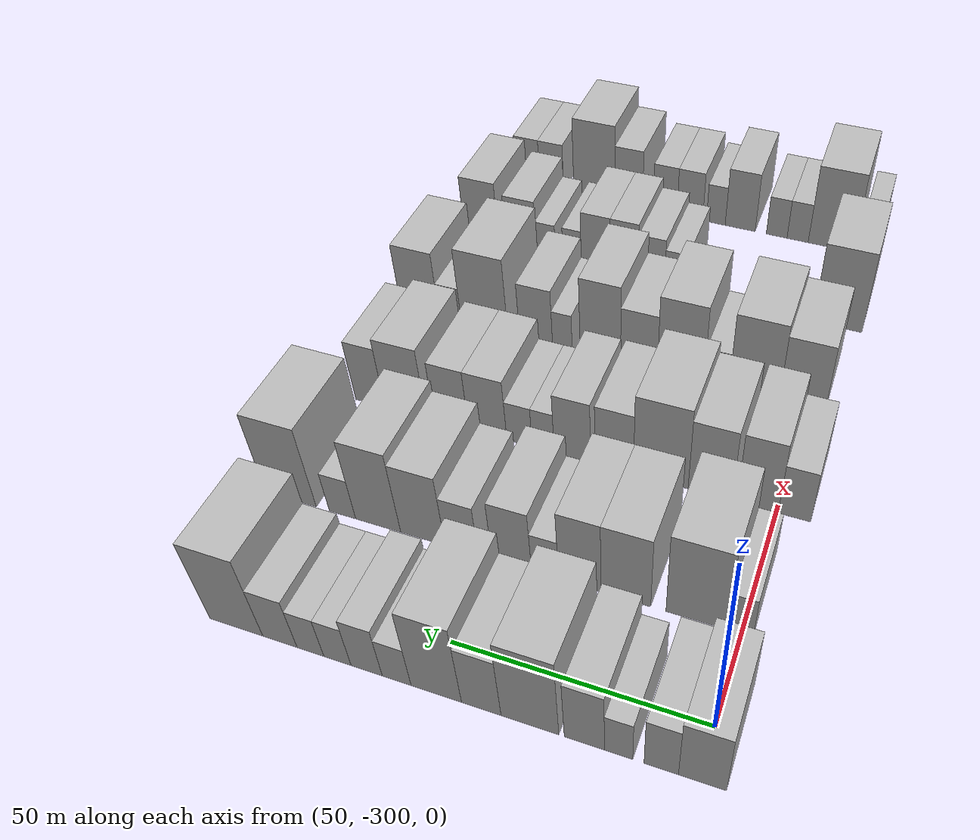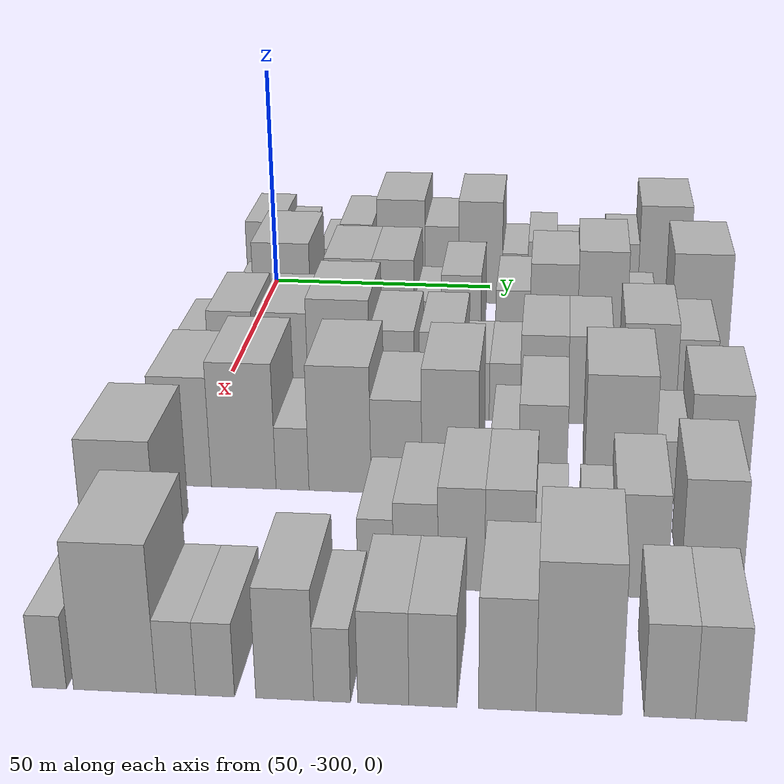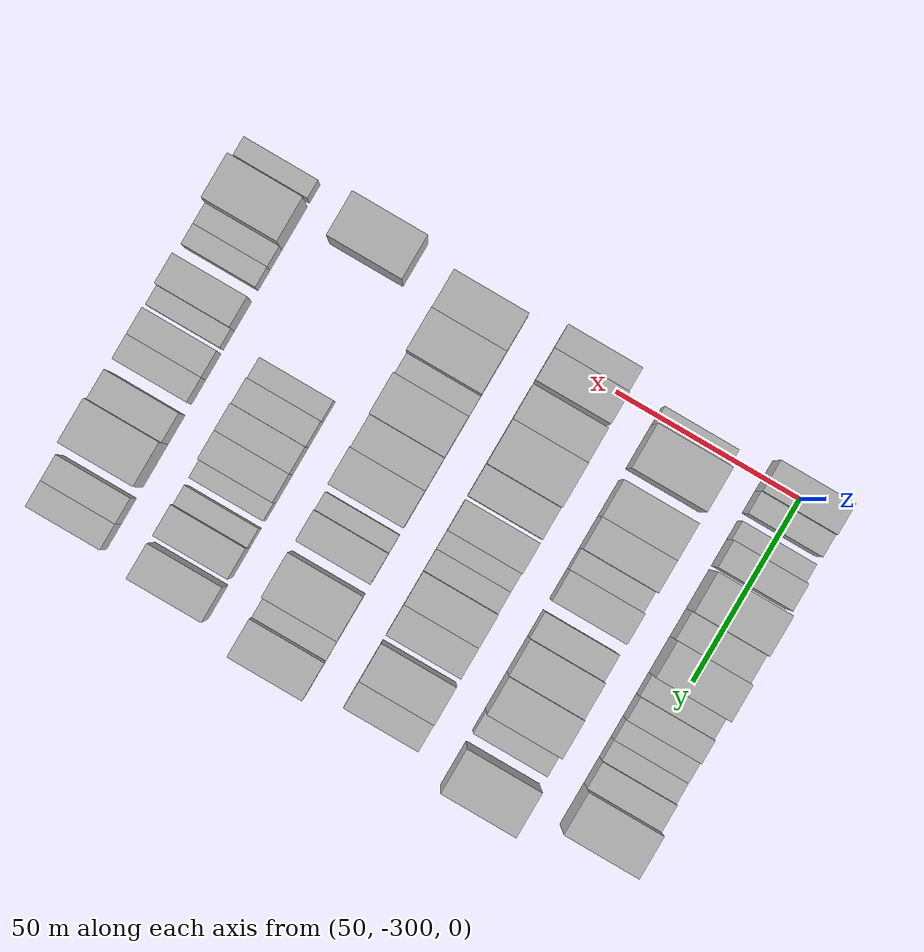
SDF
<sdf version="1.6">
 <world name="default">
  <model name="building_26">
   <static>1</static>
   <pose>50.0000 -300.4433 0 0.000000 0.000000 0.000000</pose>
   <link name="link">
    <pose>0 0 9.00 0 0 0</pose>
    <collision name="collision"><geometry><box><size>20.0000 8.2946 18.0000</size></box></geometry></collision>
    <visual name="visual">
     <cast_shadows>0</cast_shadows>
     <geometry><box><size>20.0000 8.2946 18.0000</size></box></geometry>
     <material>
      <script>
       <uri>model://HANNAS_wall/materials/scripts</uri>
       <uri>model://HANNAS_wall/materials/textures</uri>
       <name>vrc/HANNAS_wall</name>
      </script>
     </material>
    </visual>
   </link>
  </model>
  <model name="building_27">
   <static>1</static>
   <pose>50.0000 -293.2828 0 0.000000 0.000000 0.000000</pose>
   <link name="link">
    <pose>0 0 7.50 0 0 0</pose>
    <collision name="collision"><geometry><box><size>20.0000 6.0265 15.0000</size></box></geometry></collision>
    <visual name="visual">
     <cast_shadows>0</cast_shadows>
     <geometry><box><size>20.0000 6.0265 15.0000</size></box></geometry>
     <material>
      <script>
       <uri>model://HANNAS_wall/materials/scripts</uri>
       <uri>model://HANNAS_wall/materials/textures</uri>
       <name>vrc/HANNAS_wall</name>
      </script>
     </material>
    </visual>
   </link>
  </model>
  <model name="building_28">
   <static>1</static>
   <pose>50.0000 -285.7366 0 0.000000 0.000000 0.000000</pose>
   <link name="link">
    <pose>0 0 6.00 0 0 0</pose>
    <collision name="collision"><geometry><box><size>20.0000 5.0660 12.0000</size></box></geometry></collision>
    <visual name="visual">
     <cast_shadows>0</cast_shadows>
     <geometry><box><size>20.0000 5.0660 12.0000</size></box></geometry>
     <material>
      <script>
       <uri>model://HANNAS_wall/materials/scripts</uri>
       <uri>model://HANNAS_wall/materials/textures</uri>
       <name>vrc/HANNAS_wall</name>
      </script>
     </material>
    </visual>
   </link>
  </model>
  <model name="building_29">
   <static>1</static>
   <pose>50.0000 -279.5629 0 0.000000 0.000000 0.000000</pose>
   <link name="link">
    <pose>0 0 9.00 0 0 0</pose>
    <collision name="collision"><geometry><box><size>20.0000 7.2814 18.0000</size></box></geometry></collision>
    <visual name="visual">
     <cast_shadows>0</cast_shadows>
     <geometry><box><size>20.0000 7.2814 18.0000</size></box></geometry>
     <material>
      <script>
       <uri>model://HANNAS_wall/materials/scripts</uri>
       <uri>model://HANNAS_wall/materials/textures</uri>
       <name>vrc/HANNAS_wall</name>
      </script>
     </material>
    </visual>
   </link>
  </model>
  <model name="building_30">
   <static>1</static>
   <pose>50.0000 -269.5517 0 0.000000 0.000000 0.000000</pose>
   <link name="link">
    <pose>0 0 12.00 0 0 0</pose>
    <collision name="collision"><geometry><box><size>20.0000 10.7412 24.0000</size></box></geometry></collision>
    <visual name="visual">
     <cast_shadows>0</cast_shadows>
     <geometry><box><size>20.0000 10.7412 24.0000</size></box></geometry>
     <material>
      <script>
       <uri>model://HANNAS_wall/materials/scripts</uri>
       <uri>model://HANNAS_wall/materials/textures</uri>
       <name>vrc/HANNAS_wall</name>
      </script>
     </material>
    </visual>
   </link>
  </model>
  <model name="building_31">
   <static>1</static>
   <pose>50.0000 -260.4156 0 0.000000 0.000000 0.000000</pose>
   <link name="link">
    <pose>0 0 9.00 0 0 0</pose>
    <collision name="collision"><geometry><box><size>20.0000 7.5309 18.0000</size></box></geometry></collision>
    <visual name="visual">
     <cast_shadows>0</cast_shadows>
     <geometry><box><size>20.0000 7.5309 18.0000</size></box></geometry>
     <material>
      <script>
       <uri>model://HANNAS_wall/materials/scripts</uri>
       <uri>model://HANNAS_wall/materials/textures</uri>
       <name>vrc/HANNAS_wall</name>
      </script>
     </material>
    </visual>
   </link>
  </model>
  <model name="building_32">
   <static>1</static>
   <pose>50.0000 -251.7488 0 0.000000 0.000000 0.000000</pose>
   <link name="link">
    <pose>0 0 12.00 0 0 0</pose>
    <collision name="collision"><geometry><box><size>20.0000 9.8027 24.0000</size></box></geometry></collision>
    <visual name="visual">
     <cast_shadows>0</cast_shadows>
     <geometry><box><size>20.0000 9.8027 24.0000</size></box></geometry>
     <material>
      <script>
       <uri>model://HANNAS_wall/materials/scripts</uri>
       <uri>model://HANNAS_wall/materials/textures</uri>
       <name>vrc/HANNAS_wall</name>
      </script>
     </material>
    </visual>
   </link>
  </model>
  <model name="building_33">
   <static>1</static>
   <pose>50.0000 -243.9909 0 0.000000 0.000000 0.000000</pose>
   <link name="link">
    <pose>0 0 6.00 0 0 0</pose>
    <collision name="collision"><geometry><box><size>20.0000 5.7133 12.0000</size></box></geometry></collision>
    <visual name="visual">
     <cast_shadows>0</cast_shadows>
     <geometry><box><size>20.0000 5.7133 12.0000</size></box></geometry>
     <material>
      <script>
       <uri>model://HANNAS_wall/materials/scripts</uri>
       <uri>model://HANNAS_wall/materials/textures</uri>
       <name>vrc/HANNAS_wall</name>
      </script>
     </material>
    </visual>
   </link>
  </model>
  <model name="building_34">
   <static>1</static>
   <pose>50.0000 -237.9982 0 0.000000 0.000000 0.000000</pose>
   <link name="link">
    <pose>0 0 7.50 0 0 0</pose>
    <collision name="collision"><geometry><box><size>20.0000 6.2720 15.0000</size></box></geometry></collision>
    <visual name="visual">
     <cast_shadows>0</cast_shadows>
     <geometry><box><size>20.0000 6.2720 15.0000</size></box></geometry>
     <material>
      <script>
       <uri>model://HANNAS_wall/materials/scripts</uri>
       <uri>model://HANNAS_wall/materials/textures</uri>
       <name>vrc/HANNAS_wall</name>
      </script>
     </material>
    </visual>
   </link>
  </model>
  <model name="building_35">
   <static>1</static>
   <pose>50.0000 -232.0915 0 0.000000 0.000000 0.000000</pose>
   <link name="link">
    <pose>0 0 6.00 0 0 0</pose>
    <collision name="collision"><geometry><box><size>20.0000 5.5413 12.0000</size></box></geometry></collision>
    <visual name="visual">
     <cast_shadows>0</cast_shadows>
     <geometry><box><size>20.0000 5.5413 12.0000</size></box></geometry>
     <material>
      <script>
       <uri>model://HANNAS_wall/materials/scripts</uri>
       <uri>model://HANNAS_wall/materials/textures</uri>
       <name>vrc/HANNAS_wall</name>
      </script>
     </material>
    </visual>
   </link>
  </model>
  <model name="building_36">
   <static>1</static>
   <pose>50.0000 -226.5477 0 0.000000 0.000000 0.000000</pose>
   <link name="link">
    <pose>0 0 6.00 0 0 0</pose>
    <collision name="collision"><geometry><box><size>20.0000 5.5463 12.0000</size></box></geometry></collision>
    <visual name="visual">
     <cast_shadows>0</cast_shadows>
     <geometry><box><size>20.0000 5.5463 12.0000</size></box></geometry>
     <material>
      <script>
       <uri>model://HANNAS_wall/materials/scripts</uri>
       <uri>model://HANNAS_wall/materials/textures</uri>
       <name>vrc/HANNAS_wall</name>
      </script>
     </material>
    </visual>
   </link>
  </model>
  <model name="building_37">
   <static>1</static>
   <pose>50.0000 -220.1757 0 0.000000 0.000000 0.000000</pose>
   <link name="link">
    <pose>0 0 7.50 0 0 0</pose>
    <collision name="collision"><geometry><box><size>20.0000 7.1975 15.0000</size></box></geometry></collision>
    <visual name="visual">
     <cast_shadows>0</cast_shadows>
     <geometry><box><size>20.0000 7.1975 15.0000</size></box></geometry>
     <material>
      <script>
       <uri>model://HANNAS_wall/materials/scripts</uri>
       <uri>model://HANNAS_wall/materials/textures</uri>
       <name>vrc/HANNAS_wall</name>
      </script>
     </material>
    </visual>
   </link>
  </model>
  <model name="building_38">
   <static>1</static>
   <pose>50.0000 -210.9292 0 0.000000 0.000000 0.000000</pose>
   <link name="link">
    <pose>0 0 12.00 0 0 0</pose>
    <collision name="collision"><geometry><box><size>20.0000 11.2955 24.0000</size></box></geometry></collision>
    <visual name="visual">
     <cast_shadows>0</cast_shadows>
     <geometry><box><size>20.0000 11.2955 24.0000</size></box></geometry>
     <material>
      <script>
       <uri>model://HANNAS_wall/materials/scripts</uri>
       <uri>model://HANNAS_wall/materials/textures</uri>
       <name>vrc/HANNAS_wall</name>
      </script>
     </material>
    </visual>
   </link>
  </model>
  <model name="building_145">
   <static>1</static>
   <pose>79.0000 -299.7080 0 0.000000 0.000000 0.000000</pose>
   <link name="link">
    <pose>0 0 6.00 0 0 0</pose>
    <collision name="collision"><geometry><box><size>20.0000 4.8612 12.0000</size></box></geometry></collision>
    <visual name="visual">
     <cast_shadows>0</cast_shadows>
     <geometry><box><size>20.0000 4.8612 12.0000</size></box></geometry>
     <material>
      <script>
       <uri>model://HANNAS_wall/materials/scripts</uri>
       <uri>model://HANNAS_wall/materials/textures</uri>
       <name>vrc/HANNAS_wall</name>
      </script>
     </material>
    </visual>
   </link>
  </model>
  <model name="building_146">
   <static>1</static>
   <pose>79.0000 -291.3251 0 0.000000 0.000000 0.000000</pose>
   <link name="link">
    <pose>0 0 12.00 0 0 0</pose>
    <collision name="collision"><geometry><box><size>20.0000 11.9046 24.0000</size></box></geometry></collision>
    <visual name="visual">
     <cast_shadows>0</cast_shadows>
     <geometry><box><size>20.0000 11.9046 24.0000</size></box></geometry>
     <material>
      <script>
       <uri>model://HANNAS_wall/materials/scripts</uri>
       <uri>model://HANNAS_wall/materials/textures</uri>
       <name>vrc/HANNAS_wall</name>
      </script>
     </material>
    </visual>
   </link>
  </model>
  <model name="building_147">
   <static>1</static>
   <pose>79.0000 -277.4127 0 0.000000 0.000000 0.000000</pose>
   <link name="link">
    <pose>0 0 10.50 0 0 0</pose>
    <collision name="collision"><geometry><box><size>20.0000 9.9202 21.0000</size></box></geometry></collision>
    <visual name="visual">
     <cast_shadows>0</cast_shadows>
     <geometry><box><size>20.0000 9.9202 21.0000</size></box></geometry>
     <material>
      <script>
       <uri>model://HANNAS_wall/materials/scripts</uri>
       <uri>model://HANNAS_wall/materials/textures</uri>
       <name>vrc/HANNAS_wall</name>
      </script>
     </material>
    </visual>
   </link>
  </model>
  <model name="building_148">
   <static>1</static>
   <pose>79.0000 -268.1543 0 0.000000 0.000000 0.000000</pose>
   <link name="link">
    <pose>0 0 10.50 0 0 0</pose>
    <collision name="collision"><geometry><box><size>20.0000 8.5966 21.0000</size></box></geometry></collision>
    <visual name="visual">
     <cast_shadows>0</cast_shadows>
     <geometry><box><size>20.0000 8.5966 21.0000</size></box></geometry>
     <material>
      <script>
       <uri>model://HANNAS_wall/materials/scripts</uri>
       <uri>model://HANNAS_wall/materials/textures</uri>
       <name>vrc/HANNAS_wall</name>
      </script>
     </material>
    </visual>
   </link>
  </model>
  <model name="building_149">
   <static>1</static>
   <pose>79.0000 -261.0487 0 0.000000 0.000000 0.000000</pose>
   <link name="link">
    <pose>0 0 6.00 0 0 0</pose>
    <collision name="collision"><geometry><box><size>20.0000 5.6146 12.0000</size></box></geometry></collision>
    <visual name="visual">
     <cast_shadows>0</cast_shadows>
     <geometry><box><size>20.0000 5.6146 12.0000</size></box></geometry>
     <material>
      <script>
       <uri>model://HANNAS_wall/materials/scripts</uri>
       <uri>model://HANNAS_wall/materials/textures</uri>
       <name>vrc/HANNAS_wall</name>
      </script>
     </material>
    </visual>
   </link>
  </model>
  <model name="building_150">
   <static>1</static>
   <pose>79.0000 -254.1096 0 0.000000 0.000000 0.000000</pose>
   <link name="link">
    <pose>0 0 9.00 0 0 0</pose>
    <collision name="collision"><geometry><box><size>20.0000 8.2636 18.0000</size></box></geometry></collision>
    <visual name="visual">
     <cast_shadows>0</cast_shadows>
     <geometry><box><size>20.0000 8.2636 18.0000</size></box></geometry>
     <material>
      <script>
       <uri>model://HANNAS_wall/materials/scripts</uri>
       <uri>model://HANNAS_wall/materials/textures</uri>
       <name>vrc/HANNAS_wall</name>
      </script>
     </material>
    </visual>
   </link>
  </model>
  <model name="building_151">
   <static>1</static>
   <pose>79.0000 -243.4343 0 0.000000 0.000000 0.000000</pose>
   <link name="link">
    <pose>0 0 7.50 0 0 0</pose>
    <collision name="collision"><geometry><box><size>20.0000 7.0872 15.0000</size></box></geometry></collision>
    <visual name="visual">
     <cast_shadows>0</cast_shadows>
     <geometry><box><size>20.0000 7.0872 15.0000</size></box></geometry>
     <material>
      <script>
       <uri>model://HANNAS_wall/materials/scripts</uri>
       <uri>model://HANNAS_wall/materials/textures</uri>
       <name>vrc/HANNAS_wall</name>
      </script>
     </material>
    </visual>
   </link>
  </model>
  <model name="building_152">
   <static>1</static>
   <pose>79.0000 -235.0201 0 0.000000 0.000000 0.000000</pose>
   <link name="link">
    <pose>0 0 10.50 0 0 0</pose>
    <collision name="collision"><geometry><box><size>20.0000 9.7411 21.0000</size></box></geometry></collision>
    <visual name="visual">
     <cast_shadows>0</cast_shadows>
     <geometry><box><size>20.0000 9.7411 21.0000</size></box></geometry>
     <material>
      <script>
       <uri>model://HANNAS_wall/materials/scripts</uri>
       <uri>model://HANNAS_wall/materials/textures</uri>
       <name>vrc/HANNAS_wall</name>
      </script>
     </material>
    </visual>
   </link>
  </model>
  <model name="building_153">
   <static>1</static>
   <pose>79.0000 -225.0982 0 0.000000 0.000000 0.000000</pose>
   <link name="link">
    <pose>0 0 12.00 0 0 0</pose>
    <collision name="collision"><geometry><box><size>20.0000 10.1028 24.0000</size></box></geometry></collision>
    <visual name="visual">
     <cast_shadows>0</cast_shadows>
     <geometry><box><size>20.0000 10.1028 24.0000</size></box></geometry>
     <material>
      <script>
       <uri>model://HANNAS_wall/materials/scripts</uri>
       <uri>model://HANNAS_wall/materials/textures</uri>
       <name>vrc/HANNAS_wall</name>
      </script>
     </material>
    </visual>
   </link>
  </model>
  <model name="building_154">
   <static>1</static>
   <pose>79.0000 -217.0669 0 0.000000 0.000000 0.000000</pose>
   <link name="link">
    <pose>0 0 6.00 0 0 0</pose>
    <collision name="collision"><geometry><box><size>20.0000 5.9597 12.0000</size></box></geometry></collision>
    <visual name="visual">
     <cast_shadows>0</cast_shadows>
     <geometry><box><size>20.0000 5.9597 12.0000</size></box></geometry>
     <material>
      <script>
       <uri>model://HANNAS_wall/materials/scripts</uri>
       <uri>model://HANNAS_wall/materials/textures</uri>
       <name>vrc/HANNAS_wall</name>
      </script>
     </material>
    </visual>
   </link>
  </model>
  <model name="building_155">
   <static>1</static>
   <pose>79.0000 -205.1395 0 0.000000 0.000000 0.000000</pose>
   <link name="link">
    <pose>0 0 12.00 0 0 0</pose>
    <collision name="collision"><geometry><box><size>20.0000 11.8952 24.0000</size></box></geometry></collision>
    <visual name="visual">
     <cast_shadows>0</cast_shadows>
     <geometry><box><size>20.0000 11.8952 24.0000</size></box></geometry>
     <material>
      <script>
       <uri>model://HANNAS_wall/materials/scripts</uri>
       <uri>model://HANNAS_wall/materials/textures</uri>
       <name>vrc/HANNAS_wall</name>
      </script>
     </material>
    </visual>
   </link>
  </model>
  <model name="building_258">
   <static>1</static>
   <pose>108.0000 -303.6909 0 0.000000 0.000000 0.000000</pose>
   <link name="link">
    <pose>0 0 7.50 0 0 0</pose>
    <collision name="collision"><geometry><box><size>20.0000 6.6960 15.0000</size></box></geometry></collision>
    <visual name="visual">
     <cast_shadows>0</cast_shadows>
     <geometry><box><size>20.0000 6.6960 15.0000</size></box></geometry>
     <material>
      <script>
       <uri>model://HANNAS_wall/materials/scripts</uri>
       <uri>model://HANNAS_wall/materials/textures</uri>
       <name>vrc/HANNAS_wall</name>
      </script>
     </material>
    </visual>
   </link>
  </model>
  <model name="building_259">
   <static>1</static>
   <pose>108.0000 -296.0454 0 0.000000 0.000000 0.000000</pose>
   <link name="link">
    <pose>0 0 10.50 0 0 0</pose>
    <collision name="collision"><geometry><box><size>20.0000 8.5949 21.0000</size></box></geometry></collision>
    <visual name="visual">
     <cast_shadows>0</cast_shadows>
     <geometry><box><size>20.0000 8.5949 21.0000</size></box></geometry>
     <material>
      <script>
       <uri>model://HANNAS_wall/materials/scripts</uri>
       <uri>model://HANNAS_wall/materials/textures</uri>
       <name>vrc/HANNAS_wall</name>
      </script>
     </material>
    </visual>
   </link>
  </model>
  <model name="building_260">
   <static>1</static>
   <pose>108.0000 -286.0667 0 0.000000 0.000000 0.000000</pose>
   <link name="link">
    <pose>0 0 10.50 0 0 0</pose>
    <collision name="collision"><geometry><box><size>20.0000 9.3626 21.0000</size></box></geometry></collision>
    <visual name="visual">
     <cast_shadows>0</cast_shadows>
     <geometry><box><size>20.0000 9.3626 21.0000</size></box></geometry>
     <material>
      <script>
       <uri>model://HANNAS_wall/materials/scripts</uri>
       <uri>model://HANNAS_wall/materials/textures</uri>
       <name>vrc/HANNAS_wall</name>
      </script>
     </material>
    </visual>
   </link>
  </model>
  <model name="building_261">
   <static>1</static>
   <pose>108.0000 -275.4497 0 0.000000 0.000000 0.000000</pose>
   <link name="link">
    <pose>0 0 12.00 0 0 0</pose>
    <collision name="collision"><geometry><box><size>20.0000 11.8714 24.0000</size></box></geometry></collision>
    <visual name="visual">
     <cast_shadows>0</cast_shadows>
     <geometry><box><size>20.0000 11.8714 24.0000</size></box></geometry>
     <material>
      <script>
       <uri>model://HANNAS_wall/materials/scripts</uri>
       <uri>model://HANNAS_wall/materials/textures</uri>
       <name>vrc/HANNAS_wall</name>
      </script>
     </material>
    </visual>
   </link>
  </model>
  <model name="building_262">
   <static>1</static>
   <pose>108.0000 -265.2723 0 0.000000 0.000000 0.000000</pose>
   <link name="link">
    <pose>0 0 9.00 0 0 0</pose>
    <collision name="collision"><geometry><box><size>20.0000 8.4834 18.0000</size></box></geometry></collision>
    <visual name="visual">
     <cast_shadows>0</cast_shadows>
     <geometry><box><size>20.0000 8.4834 18.0000</size></box></geometry>
     <material>
      <script>
       <uri>model://HANNAS_wall/materials/scripts</uri>
       <uri>model://HANNAS_wall/materials/textures</uri>
       <name>vrc/HANNAS_wall</name>
      </script>
     </material>
    </visual>
   </link>
  </model>
  <model name="building_263">
   <static>1</static>
   <pose>108.0000 -255.9186 0 0.000000 0.000000 0.000000</pose>
   <link name="link">
    <pose>0 0 9.00 0 0 0</pose>
    <collision name="collision"><geometry><box><size>20.0000 8.2240 18.0000</size></box></geometry></collision>
    <visual name="visual">
     <cast_shadows>0</cast_shadows>
     <geometry><box><size>20.0000 8.2240 18.0000</size></box></geometry>
     <material>
      <script>
       <uri>model://HANNAS_wall/materials/scripts</uri>
       <uri>model://HANNAS_wall/materials/textures</uri>
       <name>vrc/HANNAS_wall</name>
      </script>
     </material>
    </visual>
   </link>
  </model>
  <model name="building_264">
   <static>1</static>
   <pose>108.0000 -249.2884 0 0.000000 0.000000 0.000000</pose>
   <link name="link">
    <pose>0 0 6.00 0 0 0</pose>
    <collision name="collision"><geometry><box><size>20.0000 5.0365 12.0000</size></box></geometry></collision>
    <visual name="visual">
     <cast_shadows>0</cast_shadows>
     <geometry><box><size>20.0000 5.0365 12.0000</size></box></geometry>
     <material>
      <script>
       <uri>model://HANNAS_wall/materials/scripts</uri>
       <uri>model://HANNAS_wall/materials/textures</uri>
       <name>vrc/HANNAS_wall</name>
      </script>
     </material>
    </visual>
   </link>
  </model>
  <model name="building_265">
   <static>1</static>
   <pose>108.0000 -243.8360 0 0.000000 0.000000 0.000000</pose>
   <link name="link">
    <pose>0 0 6.00 0 0 0</pose>
    <collision name="collision"><geometry><box><size>20.0000 5.8683 12.0000</size></box></geometry></collision>
    <visual name="visual">
     <cast_shadows>0</cast_shadows>
     <geometry><box><size>20.0000 5.8683 12.0000</size></box></geometry>
     <material>
      <script>
       <uri>model://HANNAS_wall/materials/scripts</uri>
       <uri>model://HANNAS_wall/materials/textures</uri>
       <name>vrc/HANNAS_wall</name>
      </script>
     </material>
    </visual>
   </link>
  </model>
  <model name="building_266">
   <static>1</static>
   <pose>108.0000 -236.4301 0 0.000000 0.000000 0.000000</pose>
   <link name="link">
    <pose>0 0 9.00 0 0 0</pose>
    <collision name="collision"><geometry><box><size>20.0000 8.9434 18.0000</size></box></geometry></collision>
    <visual name="visual">
     <cast_shadows>0</cast_shadows>
     <geometry><box><size>20.0000 8.9434 18.0000</size></box></geometry>
     <material>
      <script>
       <uri>model://HANNAS_wall/materials/scripts</uri>
       <uri>model://HANNAS_wall/materials/textures</uri>
       <name>vrc/HANNAS_wall</name>
      </script>
     </material>
    </visual>
   </link>
  </model>
  <model name="building_267">
   <static>1</static>
   <pose>108.0000 -227.8700 0 0.000000 0.000000 0.000000</pose>
   <link name="link">
    <pose>0 0 9.00 0 0 0</pose>
    <collision name="collision"><geometry><box><size>20.0000 8.1769 18.0000</size></box></geometry></collision>
    <visual name="visual">
     <cast_shadows>0</cast_shadows>
     <geometry><box><size>20.0000 8.1769 18.0000</size></box></geometry>
     <material>
      <script>
       <uri>model://HANNAS_wall/materials/scripts</uri>
       <uri>model://HANNAS_wall/materials/textures</uri>
       <name>vrc/HANNAS_wall</name>
      </script>
     </material>
    </visual>
   </link>
  </model>
  <model name="building_268">
   <static>1</static>
   <pose>108.0000 -216.7108 0 0.000000 0.000000 0.000000</pose>
   <link name="link">
    <pose>0 0 10.50 0 0 0</pose>
    <collision name="collision"><geometry><box><size>20.0000 10.1415 21.0000</size></box></geometry></collision>
    <visual name="visual">
     <cast_shadows>0</cast_shadows>
     <geometry><box><size>20.0000 10.1415 21.0000</size></box></geometry>
     <material>
      <script>
       <uri>model://HANNAS_wall/materials/scripts</uri>
       <uri>model://HANNAS_wall/materials/textures</uri>
       <name>vrc/HANNAS_wall</name>
      </script>
     </material>
    </visual>
   </link>
  </model>
  <model name="building_269">
   <static>1</static>
   <pose>108.0000 -208.0016 0 0.000000 0.000000 0.000000</pose>
   <link name="link">
    <pose>0 0 9.00 0 0 0</pose>
    <collision name="collision"><geometry><box><size>20.0000 7.2769 18.0000</size></box></geometry></collision>
    <visual name="visual">
     <cast_shadows>0</cast_shadows>
     <geometry><box><size>20.0000 7.2769 18.0000</size></box></geometry>
     <material>
      <script>
       <uri>model://HANNAS_wall/materials/scripts</uri>
       <uri>model://HANNAS_wall/materials/textures</uri>
       <name>vrc/HANNAS_wall</name>
      </script>
     </material>
    </visual>
   </link>
  </model>
  <model name="building_367">
   <static>1</static>
   <pose>137.0000 -299.0744 0 0.000000 0.000000 0.000000</pose>
   <link name="link">
    <pose>0 0 10.50 0 0 0</pose>
    <collision name="collision"><geometry><box><size>20.0000 10.2848 21.0000</size></box></geometry></collision>
    <visual name="visual">
     <cast_shadows>0</cast_shadows>
     <geometry><box><size>20.0000 10.2848 21.0000</size></box></geometry>
     <material>
      <script>
       <uri>model://HANNAS_wall/materials/scripts</uri>
       <uri>model://HANNAS_wall/materials/textures</uri>
       <name>vrc/HANNAS_wall</name>
      </script>
     </material>
    </visual>
   </link>
  </model>
  <model name="building_368">
   <static>1</static>
   <pose>137.0000 -288.2242 0 0.000000 0.000000 0.000000</pose>
   <link name="link">
    <pose>0 0 12.00 0 0 0</pose>
    <collision name="collision"><geometry><box><size>20.0000 11.4157 24.0000</size></box></geometry></collision>
    <visual name="visual">
     <cast_shadows>0</cast_shadows>
     <geometry><box><size>20.0000 11.4157 24.0000</size></box></geometry>
     <material>
      <script>
       <uri>model://HANNAS_wall/materials/scripts</uri>
       <uri>model://HANNAS_wall/materials/textures</uri>
       <name>vrc/HANNAS_wall</name>
      </script>
     </material>
    </visual>
   </link>
  </model>
  <model name="building_369">
   <static>1</static>
   <pose>137.0000 -279.6098 0 0.000000 0.000000 0.000000</pose>
   <link name="link">
    <pose>0 0 6.00 0 0 0</pose>
    <collision name="collision"><geometry><box><size>20.0000 5.8132 12.0000</size></box></geometry></collision>
    <visual name="visual">
     <cast_shadows>0</cast_shadows>
     <geometry><box><size>20.0000 5.8132 12.0000</size></box></geometry>
     <material>
      <script>
       <uri>model://HANNAS_wall/materials/scripts</uri>
       <uri>model://HANNAS_wall/materials/textures</uri>
       <name>vrc/HANNAS_wall</name>
      </script>
     </material>
    </visual>
   </link>
  </model>
  <model name="building_370">
   <static>1</static>
   <pose>137.0000 -271.2448 0 0.000000 0.000000 0.000000</pose>
   <link name="link">
    <pose>0 0 12.00 0 0 0</pose>
    <collision name="collision"><geometry><box><size>20.0000 10.9167 24.0000</size></box></geometry></collision>
    <visual name="visual">
     <cast_shadows>0</cast_shadows>
     <geometry><box><size>20.0000 10.9167 24.0000</size></box></geometry>
     <material>
      <script>
       <uri>model://HANNAS_wall/materials/scripts</uri>
       <uri>model://HANNAS_wall/materials/textures</uri>
       <name>vrc/HANNAS_wall</name>
      </script>
     </material>
    </visual>
   </link>
  </model>
  <model name="building_371">
   <static>1</static>
   <pose>137.0000 -261.3713 0 0.000000 0.000000 0.000000</pose>
   <link name="link">
    <pose>0 0 9.00 0 0 0</pose>
    <collision name="collision"><geometry><box><size>20.0000 8.8304 18.0000</size></box></geometry></collision>
    <visual name="visual">
     <cast_shadows>0</cast_shadows>
     <geometry><box><size>20.0000 8.8304 18.0000</size></box></geometry>
     <material>
      <script>
       <uri>model://HANNAS_wall/materials/scripts</uri>
       <uri>model://HANNAS_wall/materials/textures</uri>
       <name>vrc/HANNAS_wall</name>
      </script>
     </material>
    </visual>
   </link>
  </model>
  <model name="building_372">
   <static>1</static>
   <pose>137.0000 -252.0507 0 0.000000 0.000000 0.000000</pose>
   <link name="link">
    <pose>0 0 12.00 0 0 0</pose>
    <collision name="collision"><geometry><box><size>20.0000 9.8110 24.0000</size></box></geometry></collision>
    <visual name="visual">
     <cast_shadows>0</cast_shadows>
     <geometry><box><size>20.0000 9.8110 24.0000</size></box></geometry>
     <material>
      <script>
       <uri>model://HANNAS_wall/materials/scripts</uri>
       <uri>model://HANNAS_wall/materials/textures</uri>
       <name>vrc/HANNAS_wall</name>
      </script>
     </material>
    </visual>
   </link>
  </model>
  <model name="building_373">
   <static>1</static>
   <pose>137.0000 -242.7117 0 0.000000 0.000000 0.000000</pose>
   <link name="link">
    <pose>0 0 6.00 0 0 0</pose>
    <collision name="collision"><geometry><box><size>20.0000 4.8669 12.0000</size></box></geometry></collision>
    <visual name="visual">
     <cast_shadows>0</cast_shadows>
     <geometry><box><size>20.0000 4.8669 12.0000</size></box></geometry>
     <material>
      <script>
       <uri>model://HANNAS_wall/materials/scripts</uri>
       <uri>model://HANNAS_wall/materials/textures</uri>
       <name>vrc/HANNAS_wall</name>
      </script>
     </material>
    </visual>
   </link>
  </model>
  <model name="building_374">
   <static>1</static>
   <pose>137.0000 -236.1499 0 0.000000 0.000000 0.000000</pose>
   <link name="link">
    <pose>0 0 9.00 0 0 0</pose>
    <collision name="collision"><geometry><box><size>20.0000 8.2567 18.0000</size></box></geometry></collision>
    <visual name="visual">
     <cast_shadows>0</cast_shadows>
     <geometry><box><size>20.0000 8.2567 18.0000</size></box></geometry>
     <material>
      <script>
       <uri>model://HANNAS_wall/materials/scripts</uri>
       <uri>model://HANNAS_wall/materials/textures</uri>
       <name>vrc/HANNAS_wall</name>
      </script>
     </material>
    </visual>
   </link>
  </model>
  <model name="building_375">
   <static>1</static>
   <pose>137.0000 -223.0472 0 0.000000 0.000000 0.000000</pose>
   <link name="link">
    <pose>0 0 12.00 0 0 0</pose>
    <collision name="collision"><geometry><box><size>20.0000 11.9486 24.0000</size></box></geometry></collision>
    <visual name="visual">
     <cast_shadows>0</cast_shadows>
     <geometry><box><size>20.0000 11.9486 24.0000</size></box></geometry>
     <material>
      <script>
       <uri>model://HANNAS_wall/materials/scripts</uri>
       <uri>model://HANNAS_wall/materials/textures</uri>
       <name>vrc/HANNAS_wall</name>
      </script>
     </material>
    </visual>
   </link>
  </model>
  <model name="building_376">
   <static>1</static>
   <pose>137.0000 -214.1976 0 0.000000 0.000000 0.000000</pose>
   <link name="link">
    <pose>0 0 6.00 0 0 0</pose>
    <collision name="collision"><geometry><box><size>20.0000 5.7506 12.0000</size></box></geometry></collision>
    <visual name="visual">
     <cast_shadows>0</cast_shadows>
     <geometry><box><size>20.0000 5.7506 12.0000</size></box></geometry>
     <material>
      <script>
       <uri>model://HANNAS_wall/materials/scripts</uri>
       <uri>model://HANNAS_wall/materials/textures</uri>
       <name>vrc/HANNAS_wall</name>
      </script>
     </material>
    </visual>
   </link>
  </model>
  <model name="building_377">
   <static>1</static>
   <pose>137.0000 -206.2486 0 0.000000 0.000000 0.000000</pose>
   <link name="link">
    <pose>0 0 10.50 0 0 0</pose>
    <collision name="collision"><geometry><box><size>20.0000 10.1475 21.0000</size></box></geometry></collision>
    <visual name="visual">
     <cast_shadows>0</cast_shadows>
     <geometry><box><size>20.0000 10.1475 21.0000</size></box></geometry>
     <material>
      <script>
       <uri>model://HANNAS_wall/materials/scripts</uri>
       <uri>model://HANNAS_wall/materials/textures</uri>
       <name>vrc/HANNAS_wall</name>
      </script>
     </material>
    </visual>
   </link>
  </model>
  <model name="building_480">
   <static>1</static>
   <pose>166.0000 -301.8178 0 0.000000 0.000000 0.000000</pose>
   <link name="link">
    <pose>0 0 12.00 0 0 0</pose>
    <collision name="collision"><geometry><box><size>20.0000 11.7580 24.0000</size></box></geometry></collision>
    <visual name="visual">
     <cast_shadows>0</cast_shadows>
     <geometry><box><size>20.0000 11.7580 24.0000</size></box></geometry>
     <material>
      <script>
       <uri>model://HANNAS_wall/materials/scripts</uri>
       <uri>model://HANNAS_wall/materials/textures</uri>
       <name>vrc/HANNAS_wall</name>
      </script>
     </material>
    </visual>
   </link>
  </model>
  <model name="building_481">
   <static>1</static>
   <pose>166.0000 -261.5242 0 0.000000 0.000000 0.000000</pose>
   <link name="link">
    <pose>0 0 6.00 0 0 0</pose>
    <collision name="collision"><geometry><box><size>20.0000 5.6097 12.0000</size></box></geometry></collision>
    <visual name="visual">
     <cast_shadows>0</cast_shadows>
     <geometry><box><size>20.0000 5.6097 12.0000</size></box></geometry>
     <material>
      <script>
       <uri>model://HANNAS_wall/materials/scripts</uri>
       <uri>model://HANNAS_wall/materials/textures</uri>
       <name>vrc/HANNAS_wall</name>
      </script>
     </material>
    </visual>
   </link>
  </model>
  <model name="building_482">
   <static>1</static>
   <pose>166.0000 -255.2506 0 0.000000 0.000000 0.000000</pose>
   <link name="link">
    <pose>0 0 7.50 0 0 0</pose>
    <collision name="collision"><geometry><box><size>20.0000 6.9375 15.0000</size></box></geometry></collision>
    <visual name="visual">
     <cast_shadows>0</cast_shadows>
     <geometry><box><size>20.0000 6.9375 15.0000</size></box></geometry>
     <material>
      <script>
       <uri>model://HANNAS_wall/materials/scripts</uri>
       <uri>model://HANNAS_wall/materials/textures</uri>
       <name>vrc/HANNAS_wall</name>
      </script>
     </material>
    </visual>
   </link>
  </model>
  <model name="building_483">
   <static>1</static>
   <pose>166.0000 -248.1429 0 0.000000 0.000000 0.000000</pose>
   <link name="link">
    <pose>0 0 9.00 0 0 0</pose>
    <collision name="collision"><geometry><box><size>20.0000 7.2778 18.0000</size></box></geometry></collision>
    <visual name="visual">
     <cast_shadows>0</cast_shadows>
     <geometry><box><size>20.0000 7.2778 18.0000</size></box></geometry>
     <material>
      <script>
       <uri>model://HANNAS_wall/materials/scripts</uri>
       <uri>model://HANNAS_wall/materials/textures</uri>
       <name>vrc/HANNAS_wall</name>
      </script>
     </material>
    </visual>
   </link>
  </model>
  <model name="building_484">
   <static>1</static>
   <pose>166.0000 -240.6747 0 0.000000 0.000000 0.000000</pose>
   <link name="link">
    <pose>0 0 9.00 0 0 0</pose>
    <collision name="collision"><geometry><box><size>20.0000 7.6587 18.0000</size></box></geometry></collision>
    <visual name="visual">
     <cast_shadows>0</cast_shadows>
     <geometry><box><size>20.0000 7.6587 18.0000</size></box></geometry>
     <material>
      <script>
       <uri>model://HANNAS_wall/materials/scripts</uri>
       <uri>model://HANNAS_wall/materials/textures</uri>
       <name>vrc/HANNAS_wall</name>
      </script>
     </material>
    </visual>
   </link>
  </model>
  <model name="building_485">
   <static>1</static>
   <pose>166.0000 -234.3807 0 0.000000 0.000000 0.000000</pose>
   <link name="link">
    <pose>0 0 6.00 0 0 0</pose>
    <collision name="collision"><geometry><box><size>20.0000 4.9292 12.0000</size></box></geometry></collision>
    <visual name="visual">
     <cast_shadows>0</cast_shadows>
     <geometry><box><size>20.0000 4.9292 12.0000</size></box></geometry>
     <material>
      <script>
       <uri>model://HANNAS_wall/materials/scripts</uri>
       <uri>model://HANNAS_wall/materials/textures</uri>
       <name>vrc/HANNAS_wall</name>
      </script>
     </material>
    </visual>
   </link>
  </model>
  <model name="building_486">
   <static>1</static>
   <pose>166.0000 -227.2905 0 0.000000 0.000000 0.000000</pose>
   <link name="link">
    <pose>0 0 6.00 0 0 0</pose>
    <collision name="collision"><geometry><box><size>20.0000 5.2513 12.0000</size></box></geometry></collision>
    <visual name="visual">
     <cast_shadows>0</cast_shadows>
     <geometry><box><size>20.0000 5.2513 12.0000</size></box></geometry>
     <material>
      <script>
       <uri>model://HANNAS_wall/materials/scripts</uri>
       <uri>model://HANNAS_wall/materials/textures</uri>
       <name>vrc/HANNAS_wall</name>
      </script>
     </material>
    </visual>
   </link>
  </model>
  <model name="building_487">
   <static>1</static>
   <pose>166.0000 -220.5303 0 0.000000 0.000000 0.000000</pose>
   <link name="link">
    <pose>0 0 9.00 0 0 0</pose>
    <collision name="collision"><geometry><box><size>20.0000 8.2691 18.0000</size></box></geometry></collision>
    <visual name="visual">
     <cast_shadows>0</cast_shadows>
     <geometry><box><size>20.0000 8.2691 18.0000</size></box></geometry>
     <material>
      <script>
       <uri>model://HANNAS_wall/materials/scripts</uri>
       <uri>model://HANNAS_wall/materials/textures</uri>
       <name>vrc/HANNAS_wall</name>
      </script>
     </material>
    </visual>
   </link>
  </model>
  <model name="building_488">
   <static>1</static>
   <pose>166.0000 -209.6926 0 0.000000 0.000000 0.000000</pose>
   <link name="link">
    <pose>0 0 10.50 0 0 0</pose>
    <collision name="collision"><geometry><box><size>20.0000 9.4063 21.0000</size></box></geometry></collision>
    <visual name="visual">
     <cast_shadows>0</cast_shadows>
     <geometry><box><size>20.0000 9.4063 21.0000</size></box></geometry>
     <material>
      <script>
       <uri>model://HANNAS_wall/materials/scripts</uri>
       <uri>model://HANNAS_wall/materials/textures</uri>
       <name>vrc/HANNAS_wall</name>
      </script>
     </material>
    </visual>
   </link>
  </model>
  <model name="building_595">
   <static>1</static>
   <pose>195.0000 -304.2179 0 0.000000 0.000000 0.000000</pose>
   <link name="link">
    <pose>0 0 6.00 0 0 0</pose>
    <collision name="collision"><geometry><box><size>20.0000 4.9422 12.0000</size></box></geometry></collision>
    <visual name="visual">
     <cast_shadows>0</cast_shadows>
     <geometry><box><size>20.0000 4.9422 12.0000</size></box></geometry>
     <material>
      <script>
       <uri>model://HANNAS_wall/materials/scripts</uri>
       <uri>model://HANNAS_wall/materials/textures</uri>
       <name>vrc/HANNAS_wall</name>
      </script>
     </material>
    </visual>
   </link>
  </model>
  <model name="building_596">
   <static>1</static>
   <pose>195.0000 -294.8293 0 0.000000 0.000000 0.000000</pose>
   <link name="link">
    <pose>0 0 12.00 0 0 0</pose>
    <collision name="collision"><geometry><box><size>20.0000 11.8350 24.0000</size></box></geometry></collision>
    <visual name="visual">
     <cast_shadows>0</cast_shadows>
     <geometry><box><size>20.0000 11.8350 24.0000</size></box></geometry>
     <material>
      <script>
       <uri>model://HANNAS_wall/materials/scripts</uri>
       <uri>model://HANNAS_wall/materials/textures</uri>
       <name>vrc/HANNAS_wall</name>
      </script>
     </material>
    </visual>
   </link>
  </model>
  <model name="building_597">
   <static>1</static>
   <pose>195.0000 -286.1240 0 0.000000 0.000000 0.000000</pose>
   <link name="link">
    <pose>0 0 6.00 0 0 0</pose>
    <collision name="collision"><geometry><box><size>20.0000 5.5756 12.0000</size></box></geometry></collision>
    <visual name="visual">
     <cast_shadows>0</cast_shadows>
     <geometry><box><size>20.0000 5.5756 12.0000</size></box></geometry>
     <material>
      <script>
       <uri>model://HANNAS_wall/materials/scripts</uri>
       <uri>model://HANNAS_wall/materials/textures</uri>
       <name>vrc/HANNAS_wall</name>
      </script>
     </material>
    </visual>
   </link>
  </model>
  <model name="building_598">
   <static>1</static>
   <pose>195.0000 -280.5828 0 0.000000 0.000000 0.000000</pose>
   <link name="link">
    <pose>0 0 6.00 0 0 0</pose>
    <collision name="collision"><geometry><box><size>20.0000 5.5068 12.0000</size></box></geometry></collision>
    <visual name="visual">
     <cast_shadows>0</cast_shadows>
     <geometry><box><size>20.0000 5.5068 12.0000</size></box></geometry>
     <material>
      <script>
       <uri>model://HANNAS_wall/materials/scripts</uri>
       <uri>model://HANNAS_wall/materials/textures</uri>
       <name>vrc/HANNAS_wall</name>
      </script>
     </material>
    </visual>
   </link>
  </model>
  <model name="building_599">
   <static>1</static>
   <pose>195.0000 -270.7701 0 0.000000 0.000000 0.000000</pose>
   <link name="link">
    <pose>0 0 9.00 0 0 0</pose>
    <collision name="collision"><geometry><box><size>20.0000 8.1186 18.0000</size></box></geometry></collision>
    <visual name="visual">
     <cast_shadows>0</cast_shadows>
     <geometry><box><size>20.0000 8.1186 18.0000</size></box></geometry>
     <material>
      <script>
       <uri>model://HANNAS_wall/materials/scripts</uri>
       <uri>model://HANNAS_wall/materials/textures</uri>
       <name>vrc/HANNAS_wall</name>
      </script>
     </material>
    </visual>
   </link>
  </model>
  <model name="building_600">
   <static>1</static>
   <pose>195.0000 -264.1339 0 0.000000 0.000000 0.000000</pose>
   <link name="link">
    <pose>0 0 6.00 0 0 0</pose>
    <collision name="collision"><geometry><box><size>20.0000 5.1539 12.0000</size></box></geometry></collision>
    <visual name="visual">
     <cast_shadows>0</cast_shadows>
     <geometry><box><size>20.0000 5.1539 12.0000</size></box></geometry>
     <material>
      <script>
       <uri>model://HANNAS_wall/materials/scripts</uri>
       <uri>model://HANNAS_wall/materials/textures</uri>
       <name>vrc/HANNAS_wall</name>
      </script>
     </material>
    </visual>
   </link>
  </model>
  <model name="building_601">
   <static>1</static>
   <pose>195.0000 -256.9921 0 0.000000 0.000000 0.000000</pose>
   <link name="link">
    <pose>0 0 7.50 0 0 0</pose>
    <collision name="collision"><geometry><box><size>20.0000 7.1296 15.0000</size></box></geometry></collision>
    <visual name="visual">
     <cast_shadows>0</cast_shadows>
     <geometry><box><size>20.0000 7.1296 15.0000</size></box></geometry>
     <material>
      <script>
       <uri>model://HANNAS_wall/materials/scripts</uri>
       <uri>model://HANNAS_wall/materials/textures</uri>
       <name>vrc/HANNAS_wall</name>
      </script>
     </material>
    </visual>
   </link>
  </model>
  <model name="building_602">
   <static>1</static>
   <pose>195.0000 -250.1055 0 0.000000 0.000000 0.000000</pose>
   <link name="link">
    <pose>0 0 7.50 0 0 0</pose>
    <collision name="collision"><geometry><box><size>20.0000 6.6436 15.0000</size></box></geometry></collision>
    <visual name="visual">
     <cast_shadows>0</cast_shadows>
     <geometry><box><size>20.0000 6.6436 15.0000</size></box></geometry>
     <material>
      <script>
       <uri>model://HANNAS_wall/materials/scripts</uri>
       <uri>model://HANNAS_wall/materials/textures</uri>
       <name>vrc/HANNAS_wall</name>
      </script>
     </material>
    </visual>
   </link>
  </model>
  <model name="building_603">
   <static>1</static>
   <pose>195.0000 -239.8310 0 0.000000 0.000000 0.000000</pose>
   <link name="link">
    <pose>0 0 9.00 0 0 0</pose>
    <collision name="collision"><geometry><box><size>20.0000 7.9054 18.0000</size></box></geometry></collision>
    <visual name="visual">
     <cast_shadows>0</cast_shadows>
     <geometry><box><size>20.0000 7.9054 18.0000</size></box></geometry>
     <material>
      <script>
       <uri>model://HANNAS_wall/materials/scripts</uri>
       <uri>model://HANNAS_wall/materials/textures</uri>
       <name>vrc/HANNAS_wall</name>
      </script>
     </material>
    </visual>
   </link>
  </model>
  <model name="building_604">
   <static>1</static>
   <pose>195.0000 -229.9935 0 0.000000 0.000000 0.000000</pose>
   <link name="link">
    <pose>0 0 12.00 0 0 0</pose>
    <collision name="collision"><geometry><box><size>20.0000 11.7695 24.0000</size></box></geometry></collision>
    <visual name="visual">
     <cast_shadows>0</cast_shadows>
     <geometry><box><size>20.0000 11.7695 24.0000</size></box></geometry>
     <material>
      <script>
       <uri>model://HANNAS_wall/materials/scripts</uri>
       <uri>model://HANNAS_wall/materials/textures</uri>
       <name>vrc/HANNAS_wall</name>
      </script>
     </material>
    </visual>
   </link>
  </model>
  <model name="building_605">
   <static>1</static>
   <pose>195.0000 -217.6195 0 0.000000 0.000000 0.000000</pose>
   <link name="link">
    <pose>0 0 7.50 0 0 0</pose>
    <collision name="collision"><geometry><box><size>20.0000 6.9785 15.0000</size></box></geometry></collision>
    <visual name="visual">
     <cast_shadows>0</cast_shadows>
     <geometry><box><size>20.0000 6.9785 15.0000</size></box></geometry>
     <material>
      <script>
       <uri>model://HANNAS_wall/materials/scripts</uri>
       <uri>model://HANNAS_wall/materials/textures</uri>
       <name>vrc/HANNAS_wall</name>
      </script>
     </material>
    </visual>
   </link>
  </model>
  <model name="building_606">
   <static>1</static>
   <pose>195.0000 -210.6568 0 0.000000 0.000000 0.000000</pose>
   <link name="link">
    <pose>0 0 7.50 0 0 0</pose>
    <collision name="collision"><geometry><box><size>20.0000 6.9470 15.0000</size></box></geometry></collision>
    <visual name="visual">
     <cast_shadows>0</cast_shadows>
     <geometry><box><size>20.0000 6.9470 15.0000</size></box></geometry>
     <material>
      <script>
       <uri>model://HANNAS_wall/materials/scripts</uri>
       <uri>model://HANNAS_wall/materials/textures</uri>
       <name>vrc/HANNAS_wall</name>
      </script>
     </material>
    </visual>
   </link>
  </model>
 </world>
</sdf>
